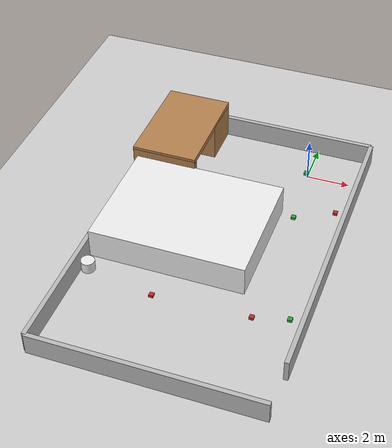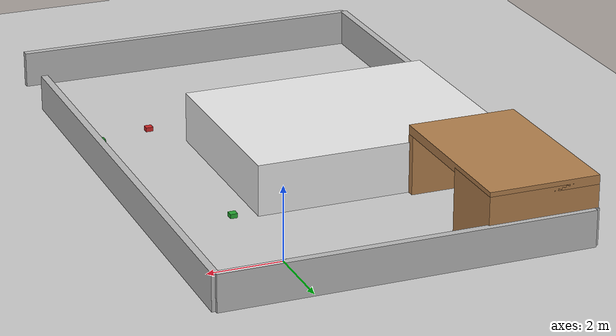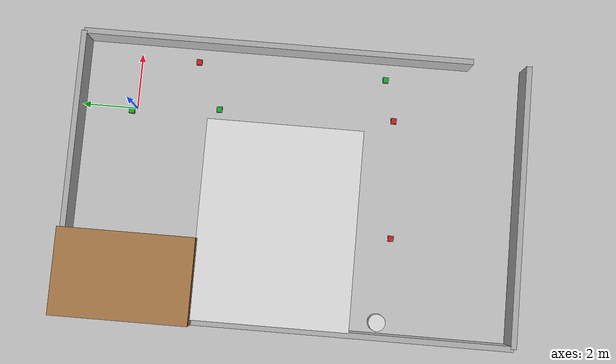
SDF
<sdf version="1.4">
 <world name="default">
  <physics type="ode">
   <gravity>0.000000 0.000000 -9.810000</gravity>
   <ode>
    <solver><type>quick</type><iters>20</iters><sor>1.000000</sor></solver>
    <constraints>
     <cfm>0.000000</cfm>
     <erp>0.200000</erp>
     <contact_max_correcting_vel>100.000000</contact_max_correcting_vel>
     <contact_surface_layer>0.000000</contact_surface_layer>
    </constraints>
   </ode>
   <real_time_update_rate>1000.000000</real_time_update_rate>
   <max_step_size>0.001000</max_step_size>
   <real_time_factor>1.000000</real_time_factor>
   <max_contacts>20</max_contacts>
  </physics>
  <light name="sun" type="directional">
   <pose>0.000000 0.000000 10.000000 0.000000 0.000000 0.000000</pose>
   <diffuse>0.800000 0.800000 0.800000 1.000000</diffuse>
   <specular>0.200000 0.200000 0.200000 1.000000</specular>
   <attenuation>
    <range>1000.000000</range>
    <constant>0.900000</constant>
    <linear>0.010000</linear>
    <quadratic>0.001000</quadratic>
   </attenuation>
   <direction>0.500000 0.100000 -0.900000</direction>
  </light>
  <model name="ground_plane">
   <static>1</static>
   <link name="link">
    <collision name="collision">
     <geometry>
      <plane><normal>0.000000 0.000000 1.000000</normal><size>100.000000 100.000000</size></plane>
     </geometry>
     <surface><friction><ode><mu>100.000000</mu><mu2>50.000000</mu2></ode></friction></surface>
    </collision>
    <visual name="visual">
     <cast_shadows>0</cast_shadows>
     <geometry>
      <plane><normal>0.000000 0.000000 1.000000</normal><size>100.000000 100.000000</size></plane>
     </geometry>
     <material>
      <script><uri>file://media/materials/scripts/gazebo.material</uri><name>Gazebo/Grey</name></script>
     </material>
    </visual>
    <velocity_decay><linear>0.000000</linear><angular>0.000000</angular></velocity_decay>
   </link>
  </model>
  <model name="wall_1_model">
   <pose>-2.5 -14.0 0.5 0.0 0.0 0.0</pose>
   <static>1</static>
   <link name="wall_1_body">
    <inertial>
     <mass>1.000000</mass>
     <inertia>
      <ixx>1.000000</ixx>
      <ixy>0.000000</ixy>
      <ixz>0.000000</ixz>
      <iyy>1.000000</iyy>
      <iyz>0.000000</iyz>
      <izz>1.000000</izz>
     </inertia>
    </inertial>
    <collision name="collision">
     <geometry><box><size>10.000000 0.200000 1.000000</size></box></geometry>
    </collision>
    <visual name="visual"><geometry><box><size>10.000000 0.200000 1.000000</size></box></geometry></visual>
    <velocity_decay><linear>0.000000</linear><angular>0.000000</angular></velocity_decay>
   </link>
  </model>
  <model name="wall_2_model">
   <pose>-2.5 2.0 0.5 0.0 0.0 0.0</pose>
   <static>1</static>
   <link name="wall_2_body">
    <inertial>
     <mass>1.000000</mass>
     <inertia>
      <ixx>1.000000</ixx>
      <ixy>0.000000</ixy>
      <ixz>0.000000</ixz>
      <iyy>1.000000</iyy>
      <iyz>0.000000</iyz>
      <izz>1.000000</izz>
     </inertia>
    </inertial>
    <collision name="collision">
     <geometry><box><size>10.000000 0.200000 1.000000</size></box></geometry>
    </collision>
    <visual name="visual"><geometry><box><size>10.000000 0.200000 1.000000</size></box></geometry></visual>
    <velocity_decay><linear>0.000000</linear><angular>0.000000</angular></velocity_decay>
   </link>
  </model>
  <model name="wall_3_model">
   <pose>-7.5 -6.0 0.5 0.0 0.0 0.0</pose>
   <static>1</static>
   <link name="wall_3_body">
    <inertial>
     <mass>1.000000</mass>
     <inertia>
      <ixx>1.000000</ixx>
      <ixy>0.000000</ixy>
      <ixz>0.000000</ixz>
      <iyy>1.000000</iyy>
      <iyz>0.000000</iyz>
      <izz>1.000000</izz>
     </inertia>
    </inertial>
    <collision name="collision">
     <geometry><box><size>0.200000 16.000000 1.000000</size></box></geometry>
    </collision>
    <visual name="visual"><geometry><box><size>0.200000 16.000000 1.000000</size></box></geometry></visual>
    <velocity_decay><linear>0.000000</linear><angular>0.000000</angular></velocity_decay>
   </link>
  </model>
  <model name="wall_4_model">
   <pose>2.5 -5.0 0.5 0.0 0.0 0.0</pose>
   <static>1</static>
   <link name="wall_4_body">
    <inertial>
     <mass>1.000000</mass>
     <inertia>
      <ixx>1.000000</ixx>
      <ixy>0.000000</ixy>
      <ixz>0.000000</ixz>
      <iyy>1.000000</iyy>
      <iyz>0.000000</iyz>
      <izz>1.000000</izz>
     </inertia>
    </inertial>
    <collision name="collision">
     <geometry><box><size>0.200000 14.000000 1.000000</size></box></geometry>
    </collision>
    <visual name="visual"><geometry><box><size>0.200000 14.000000 1.000000</size></box></geometry></visual>
    <velocity_decay><linear>0.000000</linear><angular>0.000000</angular></velocity_decay>
   </link>
  </model>
  <scene>
   <ambient>0.200000 0.200000 0.200000 1.000000</ambient>
   <background>0.700000 0.700000 0.700000 1.000000</background>
   <shadows>1</shadows>
  </scene>
  <model name="bed">
   <static>0</static>
   <link name="bed_link">
    <inertial>
     <pose>0.000000 0.000000 -1.000000 0.000000 0.000000 0.000000</pose>
     <inertia>
      <ixx>2.050000</ixx>
      <ixy>0.000000</ixy>
      <ixz>0.000000</ixz>
      <iyy>2.050000</iyy>
      <iyz>0.000000</iyz>
      <izz>2.050000</izz>
     </inertia>
     <mass>100.000000</mass>
    </inertial>
    <collision name="bed_geom"><geometry><box><size>7.00000 5.50000 1.40000</size></box></geometry></collision>
    <visual name="bed_visual">
     <geometry><box><size>7.00000 5.50000 1.40000</size></box></geometry>
     <material>
      <script><uri>file://media/materials/scripts/gazebo.material</uri><name>Gazebo/White</name></script>
     </material>
    </visual>
    <velocity_decay><linear>0.000000</linear><angular>0.000000</angular></velocity_decay>
   </link>
   <pose>-3.9 -5.5 0.7 0.0 0.0 0.0</pose>
  </model>
  <model name="trashbin">
   <static>0</static>
   <link name="trashbin_link">
    <inertial>
     <pose>0.000000 0.000000 -1.000000 0.000000 0.000000 0.000000</pose>
     <inertia>
      <ixx>2.050000</ixx>
      <ixy>0.000000</ixy>
      <ixz>0.000000</ixz>
      <iyy>2.050000</iyy>
      <iyz>0.000000</iyz>
      <izz>2.050000</izz>
     </inertia>
     <mass>100.000000</mass>
    </inertial>
    <collision name="trashbin_geom">
     <pose>0.000000 0.000000 0.250000 0.000000 0.000000 0.000000</pose>
     <geometry><cylinder><radius>0.300000</radius><length>0.500000</length></cylinder></geometry>
    </collision>
    <visual name="trashbin_visual">
     <pose>0.000000 0.000000 0.250000 0.000000 0.000000 0.000000</pose>
     <geometry><cylinder><radius>0.300000</radius><length>0.500000</length></cylinder></geometry>
     <material>
      <script><uri>file://media/materials/scripts/gazebo.material</uri><name>Gazebo/White</name></script>
     </material>
    </visual>
    <velocity_decay><linear>0.000000</linear><angular>0.000000</angular></velocity_decay>
   </link>
   <pose>-7.0 -9.25 0.25 0.0 0.0 0.0</pose>
  </model>
  <model name="table">
   <static>0</static>
   <link name="table_link">
    <inertial>
     <pose>0.000000 0.000000 -1.000000 0.000000 0.000000 0.000000</pose>
     <inertia>
      <ixx>2.050000</ixx>
      <ixy>0.000000</ixy>
      <ixz>0.000000</ixz>
      <iyy>2.050000</iyy>
      <iyz>0.000000</iyz>
      <izz>2.050000</izz>
     </inertia>
     <mass>100.000000</mass>
    </inertial>
    <collision name="table_left_leg">
     <pose>0.000000 -2.25000 0.875000 0.000000 0.000000 0.000000</pose>
     <geometry><box><size>3.00000 0.25000 1.75000</size></box></geometry>
    </collision>
    <visual name="table_left_leg_visual">
     <pose>0.000000 -2.25000 0.875000 0.000000 0.000000 0.000000</pose>
     <geometry><box><size>3.00000 0.25000 1.75000</size></box></geometry>
     <material>
      <script><uri>file://media/materials/scripts/gazebo.material</uri><name>Gazebo/Wood</name></script>
     </material>
    </visual>
    <collision name="table_right_leg">
     <pose>0.000000 1.375000 0.875000 0.000000 0.000000 0.000000</pose>
     <geometry><box><size>3.00000 2.00000 1.75000</size></box></geometry>
    </collision>
    <visual name="table_right_leg_visual">
     <pose>0.000000 1.375000 0.875000 0.000000 0.000000 0.000000</pose>
     <geometry><box><size>3.00000 2.00000 1.75000</size></box></geometry>
     <material>
      <script><uri>file://media/materials/scripts/gazebo.material</uri><name>Gazebo/Wood</name></script>
     </material>
    </visual>
    <collision name="table_top">
     <pose>0.000000 0.000000 1.750000 0.000000 0.000000 0.000000</pose>
     <geometry><box><size>3.00000 4.75000 0.25000</size></box></geometry>
    </collision>
    <visual name="table_top_visual">
     <pose>0.000000 0.000000 1.750000 0.000000 0.000000 0.000000</pose>
     <geometry><box><size>3.00000 4.75000 0.25000</size></box></geometry>
     <material>
      <script><uri>file://media/materials/scripts/gazebo.material</uri><name>Gazebo/Wood</name></script>
     </material>
    </visual>
    <velocity_decay><linear>0.000000</linear><angular>0.000000</angular></velocity_decay>
   </link>
   <pose>-6.1 -0.425 0.0 0.0 0.0 0.0</pose>
  </model>
  <model name="paperball1">
   <static>0</static>
   <link name="paperball1_link">
    <inertial>
     <mass>0.05</mass>
     <inertia>
      <ixx>0.000052083</ixx>
      <ixy>0.0</ixy>
      <ixz>0.0</ixz>
      <iyy>0.000052083</iyy>
      <iyz>0.0</iyz>
      <izz>0.000020833</izz>
     </inertia>
    </inertial>
    <collision name="paperball1_collision">
     <geometry><box><size>0.001 0.001 0.001</size></box></geometry>
     <surface>
      <friction><ode><mu>30.0</mu><mu2>30.0</mu2><fdir1>0 0 0</fdir1></ode></friction>
      <contact>
       <ode><kp>1000000.0</kp><kd>100.0</kd><min_depth>0.0025</min_depth><max_vel>1.0</max_vel></ode>
      </contact>
     </surface>
    </collision>
    <visual name="paperball1_visual">
     <geometry><box><size>0.20000 0.20000 0.20000</size></box></geometry>
     <material>
      <script><uri>file://media/materials/scripts/gazebo.material</uri><name>Gazebo/Red</name></script>
     </material>
    </visual>
    <velocity_decay><linear>0.000000</linear><angular>0.000000</angular></velocity_decay>
   </link>
   <pose>-4.0 -9.6 0.0 0.0 0.0 0.0</pose>
  </model>
  <model name="paperball2">
   <static>0</static>
   <link name="paperball2_link">
    <inertial>
     <mass>0.05</mass>
     <inertia>
      <ixx>0.000052083</ixx>
      <ixy>0.0</ixy>
      <ixz>0.0</ixz>
      <iyy>0.000052083</iyy>
      <iyz>0.0</iyz>
      <izz>0.000020833</izz>
     </inertia>
    </inertial>
    <collision name="paperball2_collision">
     <geometry><box><size>0.001 0.001 0.001</size></box></geometry>
     <surface>
      <friction><ode><mu>30.0</mu><mu2>30.0</mu2><fdir1>0 0 0</fdir1></ode></friction>
      <contact>
       <ode><kp>1000000.0</kp><kd>100.0</kd><min_depth>0.0025</min_depth><max_vel>1.0</max_vel></ode>
      </contact>
     </surface>
    </collision>
    <visual name="paperball2_visual">
     <geometry><box><size>0.20000 0.20000 0.20000</size></box></geometry>
     <material>
      <script><uri>file://media/materials/scripts/gazebo.material</uri><name>Gazebo/Red</name></script>
     </material>
    </visual>
    <velocity_decay><linear>0.000000</linear><angular>0.000000</angular></velocity_decay>
   </link>
   <pose>0.3 -9.4 0.0 0.0 0.0 0.0</pose>
  </model>
  <model name="paperball3">
   <static>0</static>
   <link name="paperball3_link">
    <inertial>
     <mass>0.05</mass>
     <inertia>
      <ixx>0.000052083</ixx>
      <ixy>0.0</ixy>
      <ixz>0.0</ixz>
      <iyy>0.000052083</iyy>
      <iyz>0.0</iyz>
      <izz>0.000020833</izz>
     </inertia>
    </inertial>
    <collision name="paperball3_collision">
     <geometry><box><size>0.001 0.001 0.001</size></box></geometry>
     <surface>
      <friction><ode><mu>30.0</mu><mu2>30.0</mu2><fdir1>0 0 0</fdir1></ode></friction>
      <contact>
       <ode><kp>1000000.0</kp><kd>100.0</kd><min_depth>0.0025</min_depth><max_vel>1.0</max_vel></ode>
      </contact>
     </surface>
    </collision>
    <visual name="paperball3_visual">
     <geometry><box><size>0.20000 0.20000 0.20000</size></box></geometry>
     <material>
      <script><uri>file://media/materials/scripts/gazebo.material</uri><name>Gazebo/Red</name></script>
     </material>
    </visual>
    <velocity_decay><linear>0.000000</linear><angular>0.000000</angular></velocity_decay>
   </link>
   <pose>1.9 -2.1 0.0 0.0 0.0 0.0</pose>
  </model>
  <model name="clothes1">
   <static>0</static>
   <link name="clothes1_link">
    <inertial>
     <mass>0.05</mass>
     <inertia>
      <ixx>0.000052083</ixx>
      <ixy>0.0</ixy>
      <ixz>0.0</ixz>
      <iyy>0.000052083</iyy>
      <iyz>0.0</iyz>
      <izz>0.000020833</izz>
     </inertia>
    </inertial>
    <collision name="clothes1_collision">
     <geometry><box><size>0.001 0.001 0.001</size></box></geometry>
     <surface>
      <friction><ode><mu>30.0</mu><mu2>30.0</mu2><fdir1>0 0 0</fdir1></ode></friction>
      <contact>
       <ode><kp>1000000.0</kp><kd>100.0</kd><min_depth>0.0025</min_depth><max_vel>1.0</max_vel></ode>
      </contact>
     </surface>
    </collision>
    <visual name="clothes1_visual">
     <geometry><box><size>0.20000 0.20000 0.20000</size></box></geometry>
     <material>
      <script><uri>file://media/materials/scripts/gazebo.material</uri><name>Gazebo/Green</name></script>
     </material>
    </visual>
    <velocity_decay><linear>0.000000</linear><angular>0.000000</angular></velocity_decay>
   </link>
   <pose>1.8 -9.0 0.0 0.0 0.0 0.0</pose>
  </model>
  <model name="clothes2">
   <static>0</static>
   <link name="clothes2_link">
    <inertial>
     <mass>0.05</mass>
     <inertia>
      <ixx>0.000052083</ixx>
      <ixy>0.0</ixy>
      <ixz>0.0</ixz>
      <iyy>0.000052083</iyy>
      <iyz>0.0</iyz>
      <izz>0.000020833</izz>
     </inertia>
    </inertial>
    <collision name="clothes2_collision">
     <geometry><box><size>0.001 0.001 0.001</size></box></geometry>
     <surface>
      <friction><ode><mu>30.0</mu><mu2>30.0</mu2><fdir1>0 0 0</fdir1></ode></friction>
      <contact>
       <ode><kp>1000000.0</kp><kd>100.0</kd><min_depth>0.0025</min_depth><max_vel>1.0</max_vel></ode>
      </contact>
     </surface>
    </collision>
    <visual name="clothes2_visual">
     <geometry><box><size>0.20000 0.20000 0.20000</size></box></geometry>
     <material>
      <script><uri>file://media/materials/scripts/gazebo.material</uri><name>Gazebo/Green</name></script>
     </material>
    </visual>
    <velocity_decay><linear>0.000000</linear><angular>0.000000</angular></velocity_decay>
   </link>
   <pose>0.2 -3.0 0.0 0.0 0.0 0.0</pose>
  </model>
  <model name="clothes3">
   <static>0</static>
   <link name="clothes3_link">
    <inertial>
     <mass>0.05</mass>
     <inertia>
      <ixx>0.000052083</ixx>
      <ixy>0.0</ixy>
      <ixz>0.0</ixz>
      <iyy>0.000052083</iyy>
      <iyz>0.0</iyz>
      <izz>0.000020833</izz>
     </inertia>
    </inertial>
    <collision name="clothes3_collision">
     <geometry><box><size>0.001 0.001 0.001</size></box></geometry>
     <surface>
      <friction><ode><mu>30.0</mu><mu2>30.0</mu2><fdir1>0 0 0</fdir1></ode></friction>
      <contact>
       <ode><kp>1000000.0</kp><kd>100.0</kd><min_depth>0.0025</min_depth><max_vel>1.0</max_vel></ode>
      </contact>
     </surface>
    </collision>
    <visual name="clothes3_visual">
     <geometry><box><size>0.20000 0.20000 0.20000</size></box></geometry>
     <material>
      <script><uri>file://media/materials/scripts/gazebo.material</uri><name>Gazebo/Green</name></script>
     </material>
    </visual>
    <velocity_decay><linear>0.000000</linear><angular>0.000000</angular></velocity_decay>
   </link>
   <pose>-0.1 0.2 0.0 0.0 0.0 0.0</pose>
  </model>
 </world>
</sdf>
